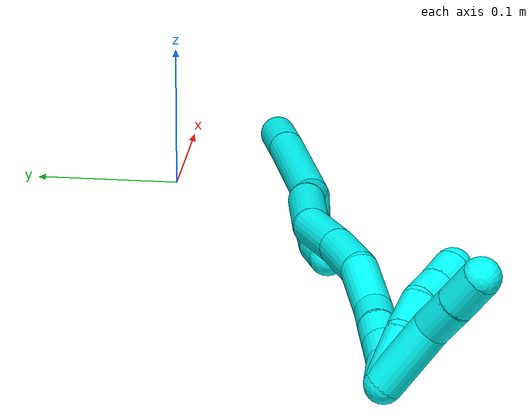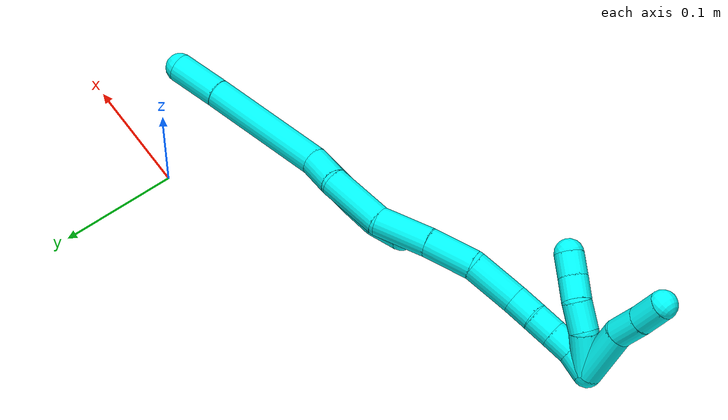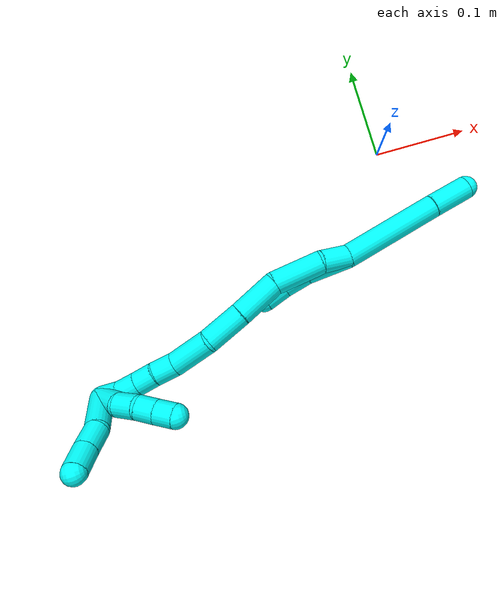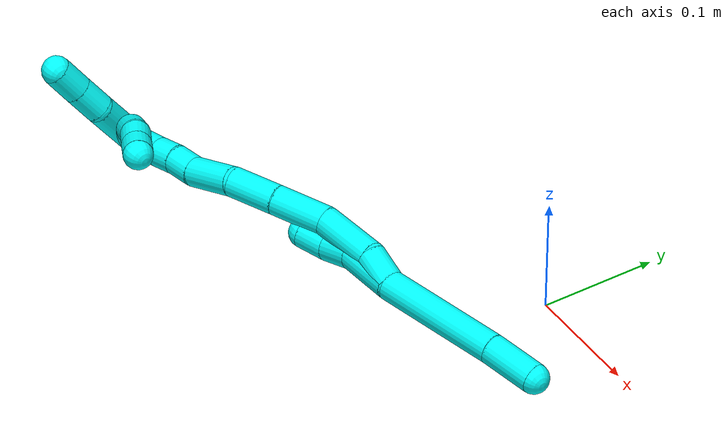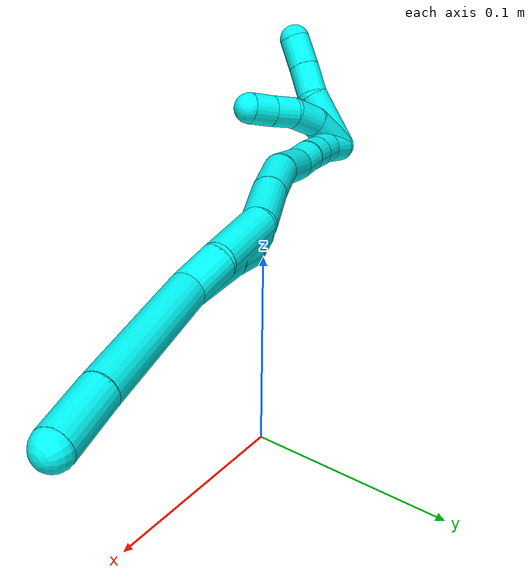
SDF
<sdf version="1.7">
 <world name="default">
  <model name="3">
   <static>0</static>
   <link name="3">
    <collision name="collision-cylinder-e_1_2_8">
     <pose>-0.00631 0.01017 -0.051983 -2.9484 -0.118577 1.09923</pose>
     <geometry><cylinder><radius>0.0125</radius><length>0.106687</length></cylinder></geometry>
     <surface>
      <friction><ode><mu>1.16</mu><mu2>1.16</mu2><slip1>0</slip1><slip2>0</slip2></ode></friction>
      <contact><ode><kp>1e+06</kp><kd>1</kd><max_vel>0</max_vel><min_depth>0.001</min_depth></ode></contact>
     </surface>
    </collision>
    <visual name="visual-cylinder-e_1_2_8">
     <pose>-0.00631 0.01017 -0.051983 -2.9484 -0.118577 1.09923</pose>
     <geometry><cylinder><radius>0.0125</radius><length>0.106687</length></cylinder></geometry>
     <material><ambient>0.003922 1 0.996078 1</ambient></material>
    </visual>
    <collision name="collision-cylinder-e_2_8_6">
     <pose>-0.016137 0.023586 -0.125088 -2.9891 -0.163062 1.63802</pose>
     <geometry><cylinder><radius>0.0125</radius><length>0.043313</length></cylinder></geometry>
     <surface>
      <friction><ode><mu>1.16</mu><mu2>1.16</mu2><slip1>0</slip1><slip2>0</slip2></ode></friction>
      <contact><ode><kp>1e+06</kp><kd>1</kd><max_vel>0</max_vel><min_depth>0.001</min_depth></ode></contact>
     </surface>
    </collision>
    <visual name="visual-cylinder-e_2_8_6">
     <pose>-0.016137 0.023586 -0.125088 -2.9891 -0.163062 1.63802</pose>
     <geometry><cylinder><radius>0.0125</radius><length>0.043313</length></cylinder></geometry>
     <material><ambient>0.003922 1 0.996078 1</ambient></material>
    </visual>
    <collision name="collision-cylinder-e_1_2_9">
     <pose>0.000117 -0.001576 0.023484 0.067004 0.00498 0.000167</pose>
     <geometry><cylinder><radius>0.0125</radius><length>0.047075</length></cylinder></geometry>
     <surface>
      <friction><ode><mu>1.16</mu><mu2>1.16</mu2><slip1>0</slip1><slip2>0</slip2></ode></friction>
      <contact><ode><kp>1e+06</kp><kd>1</kd><max_vel>0</max_vel><min_depth>0.001</min_depth></ode></contact>
     </surface>
    </collision>
    <visual name="visual-cylinder-e_1_2_9">
     <pose>0.000117 -0.001576 0.023484 0.067004 0.00498 0.000167</pose>
     <geometry><cylinder><radius>0.0125</radius><length>0.047075</length></cylinder></geometry>
     <material><ambient>0.003922 1 0.996078 1</ambient></material>
    </visual>
    <collision name="collision-cylinder-e_2_9_10">
     <pose>-0.001504 -0.007371 0.060091 0.311095 -0.125486 -0.019703</pose>
     <geometry><cylinder><radius>0.0125</radius><length>0.027786</length></cylinder></geometry>
     <surface>
      <friction><ode><mu>1.16</mu><mu2>1.16</mu2><slip1>0</slip1><slip2>0</slip2></ode></friction>
      <contact><ode><kp>1e+06</kp><kd>1</kd><max_vel>0</max_vel><min_depth>0.001</min_depth></ode></contact>
     </surface>
    </collision>
    <visual name="visual-cylinder-e_2_9_10">
     <pose>-0.001504 -0.007371 0.060091 0.311095 -0.125486 -0.019703</pose>
     <geometry><cylinder><radius>0.0125</radius><length>0.027786</length></cylinder></geometry>
     <material><ambient>0.003922 1 0.996078 1</ambient></material>
    </visual>
    <collision name="collision-cylinder-e_3_10_5">
     <pose>-0.001006 -0.014964 0.085113 0.276272 0.178917 0.024939</pose>
     <geometry><cylinder><radius>0.0125</radius><length>0.025139</length></cylinder></geometry>
     <surface>
      <friction><ode><mu>1.16</mu><mu2>1.16</mu2><slip1>0</slip1><slip2>0</slip2></ode></friction>
      <contact><ode><kp>1e+06</kp><kd>1</kd><max_vel>0</max_vel><min_depth>0.001</min_depth></ode></contact>
     </surface>
    </collision>
    <visual name="visual-cylinder-e_3_10_5">
     <pose>-0.001006 -0.014964 0.085113 0.276272 0.178917 0.024939</pose>
     <geometry><cylinder><radius>0.0125</radius><length>0.025139</length></cylinder></geometry>
     <material><ambient>0.003922 1 0.996078 1</ambient></material>
    </visual>
    <collision name="collision-cylinder-e_1_2_11">
     <pose>0.002573 0.002629 0.014765 -0.176198 0.169934 -0.015046</pose>
     <geometry><cylinder><radius>0.0125</radius><length>0.030433</length></cylinder></geometry>
     <surface>
      <friction><ode><mu>1.16</mu><mu2>1.16</mu2><slip1>0</slip1><slip2>0</slip2></ode></friction>
      <contact><ode><kp>1e+06</kp><kd>1</kd><max_vel>0</max_vel><min_depth>0.001</min_depth></ode></contact>
     </surface>
    </collision>
    <visual name="visual-cylinder-e_1_2_11">
     <pose>0.002573 0.002629 0.014765 -0.176198 0.169934 -0.015046</pose>
     <geometry><cylinder><radius>0.0125</radius><length>0.030433</length></cylinder></geometry>
     <material><ambient>0.003922 1 0.996078 1</ambient></material>
    </visual>
    <collision name="collision-cylinder-e_2_11_12">
     <pose>0.007164 0.002763 0.056134 0.093491 0.075362 0.003527</pose>
     <geometry><cylinder><radius>0.0125</radius><length>0.053592</length></cylinder></geometry>
     <surface>
      <friction><ode><mu>1.16</mu><mu2>1.16</mu2><slip1>0</slip1><slip2>0</slip2></ode></friction>
      <contact><ode><kp>1e+06</kp><kd>1</kd><max_vel>0</max_vel><min_depth>0.001</min_depth></ode></contact>
     </surface>
    </collision>
    <visual name="visual-cylinder-e_2_11_12">
     <pose>0.007164 0.002763 0.056134 0.093491 0.075362 0.003527</pose>
     <geometry><cylinder><radius>0.0125</radius><length>0.053592</length></cylinder></geometry>
     <material><ambient>0.003922 1 0.996078 1</ambient></material>
    </visual>
    <collision name="collision-cylinder-e_3_12_13">
     <pose>0.014766 -0.007732 0.103663 0.365172 0.244279 0.045322</pose>
     <geometry><cylinder><radius>0.0125</radius><length>0.046178</length></cylinder></geometry>
     <surface>
      <friction><ode><mu>1.16</mu><mu2>1.16</mu2><slip1>0</slip1><slip2>0</slip2></ode></friction>
      <contact><ode><kp>1e+06</kp><kd>1</kd><max_vel>0</max_vel><min_depth>0.001</min_depth></ode></contact>
     </surface>
    </collision>
    <visual name="visual-cylinder-e_3_12_13">
     <pose>0.014766 -0.007732 0.103663 0.365172 0.244279 0.045322</pose>
     <geometry><cylinder><radius>0.0125</radius><length>0.046178</length></cylinder></geometry>
     <material><ambient>0.003922 1 0.996078 1</ambient></material>
    </visual>
    <collision name="collision-cylinder-e_4_13_14">
     <pose>0.024056 -0.02286 0.143934 0.353007 0.177837 0.0318</pose>
     <geometry><cylinder><radius>0.0125</radius><length>0.041892</length></cylinder></geometry>
     <surface>
      <friction><ode><mu>1.16</mu><mu2>1.16</mu2><slip1>0</slip1><slip2>0</slip2></ode></friction>
      <contact><ode><kp>1e+06</kp><kd>1</kd><max_vel>0</max_vel><min_depth>0.001</min_depth></ode></contact>
     </surface>
    </collision>
    <visual name="visual-cylinder-e_4_13_14">
     <pose>0.024056 -0.02286 0.143934 0.353007 0.177837 0.0318</pose>
     <geometry><cylinder><radius>0.0125</radius><length>0.041892</length></cylinder></geometry>
     <material><ambient>0.003922 1 0.996078 1</ambient></material>
    </visual>
    <collision name="collision-cylinder-e_5_14_15">
     <pose>0.025189 -0.037897 0.183053 0.380542 -0.120195 -0.023177</pose>
     <geometry><cylinder><radius>0.0125</radius><length>0.042905</length></cylinder></geometry>
     <surface>
      <friction><ode><mu>1.16</mu><mu2>1.16</mu2><slip1>0</slip1><slip2>0</slip2></ode></friction>
      <contact><ode><kp>1e+06</kp><kd>1</kd><max_vel>0</max_vel><min_depth>0.001</min_depth></ode></contact>
     </surface>
    </collision>
    <visual name="visual-cylinder-e_5_14_15">
     <pose>0.025189 -0.037897 0.183053 0.380542 -0.120195 -0.023177</pose>
     <geometry><cylinder><radius>0.0125</radius><length>0.042905</length></cylinder></geometry>
     <material><ambient>0.003922 1 0.996078 1</ambient></material>
    </visual>
    <collision name="collision-cylinder-e_6_15_16">
     <pose>0.022685 -0.047621 0.213998 0.160885 0.006036 0.000487</pose>
     <geometry><cylinder><radius>0.0125</radius><length>0.022635</length></cylinder></geometry>
     <surface>
      <friction><ode><mu>1.16</mu><mu2>1.16</mu2><slip1>0</slip1><slip2>0</slip2></ode></friction>
      <contact><ode><kp>1e+06</kp><kd>1</kd><max_vel>0</max_vel><min_depth>0.001</min_depth></ode></contact>
     </surface>
    </collision>
    <visual name="visual-cylinder-e_6_15_16">
     <pose>0.022685 -0.047621 0.213998 0.160885 0.006036 0.000487</pose>
     <geometry><cylinder><radius>0.0125</radius><length>0.022635</length></cylinder></geometry>
     <material><ambient>0.003922 1 0.996078 1</ambient></material>
    </visual>
    <collision name="collision-cylinder-e_7_16_17">
     <pose>0.021976 -0.052071 0.234996 0.262158 -0.076263 -0.010059</pose>
     <geometry><cylinder><radius>0.0125</radius><length>0.020408</length></cylinder></geometry>
     <surface>
      <friction><ode><mu>1.16</mu><mu2>1.16</mu2><slip1>0</slip1><slip2>0</slip2></ode></friction>
      <contact><ode><kp>1e+06</kp><kd>1</kd><max_vel>0</max_vel><min_depth>0.001</min_depth></ode></contact>
     </surface>
    </collision>
    <visual name="visual-cylinder-e_7_16_17">
     <pose>0.021976 -0.052071 0.234996 0.262158 -0.076263 -0.010059</pose>
     <geometry><cylinder><radius>0.0125</radius><length>0.020408</length></cylinder></geometry>
     <material><ambient>0.003922 1 0.996078 1</ambient></material>
    </visual>
    <collision name="collision-cylinder-e_8_17_18">
     <pose>0.020512 -0.057147 0.255011 0.234986 -0.065434 -0.007726</pose>
     <geometry><cylinder><radius>0.0125</radius><length>0.020997</length></cylinder></geometry>
     <surface>
      <friction><ode><mu>1.16</mu><mu2>1.16</mu2><slip1>0</slip1><slip2>0</slip2></ode></friction>
      <contact><ode><kp>1e+06</kp><kd>1</kd><max_vel>0</max_vel><min_depth>0.001</min_depth></ode></contact>
     </surface>
    </collision>
    <visual name="visual-cylinder-e_8_17_18">
     <pose>0.020512 -0.057147 0.255011 0.234986 -0.065434 -0.007726</pose>
     <geometry><cylinder><radius>0.0125</radius><length>0.020997</length></cylinder></geometry>
     <material><ambient>0.003922 1 0.996078 1</ambient></material>
    </visual>
    <collision name="collision-cylinder-e_9_18_1">
     <pose>0.017252 -0.060573 0.27531 0.097305 -0.248039 -0.012139</pose>
     <geometry><cylinder><radius>0.0125</radius><length>0.020959</length></cylinder></geometry>
     <surface>
      <friction><ode><mu>1.16</mu><mu2>1.16</mu2><slip1>0</slip1><slip2>0</slip2></ode></friction>
      <contact><ode><kp>1e+06</kp><kd>1</kd><max_vel>0</max_vel><min_depth>0.001</min_depth></ode></contact>
     </surface>
    </collision>
    <visual name="visual-cylinder-e_9_18_1">
     <pose>0.017252 -0.060573 0.27531 0.097305 -0.248039 -0.012139</pose>
     <geometry><cylinder><radius>0.0125</radius><length>0.020959</length></cylinder></geometry>
     <material><ambient>0.003922 1 0.996078 1</ambient></material>
    </visual>
    <collision name="collision-cylinder-e_1_1_19">
     <pose>0.028754 -0.060072 0.275269 -2.99609 0.940864 -2.8569</pose>
     <geometry><cylinder><radius>0.0125</radius><length>0.034836</length></cylinder></geometry>
     <surface>
      <friction><ode><mu>1.16</mu><mu2>1.16</mu2><slip1>0</slip1><slip2>0</slip2></ode></friction>
      <contact><ode><kp>1e+06</kp><kd>1</kd><max_vel>0</max_vel><min_depth>0.001</min_depth></ode></contact>
     </surface>
    </collision>
    <visual name="visual-cylinder-e_1_1_19">
     <pose>0.028754 -0.060072 0.275269 -2.99609 0.940864 -2.8569</pose>
     <geometry><cylinder><radius>0.0125</radius><length>0.034836</length></cylinder></geometry>
     <material><ambient>0.003922 1 0.996078 1</ambient></material>
    </visual>
    <collision name="collision-cylinder-e_2_19_20">
     <pose>0.050278 -0.058979 0.255224 3.10174 0.645071 3.02248</pose>
     <geometry><cylinder><radius>0.0125</radius><length>0.024779</length></cylinder></geometry>
     <surface>
      <friction><ode><mu>1.16</mu><mu2>1.16</mu2><slip1>0</slip1><slip2>0</slip2></ode></friction>
      <contact><ode><kp>1e+06</kp><kd>1</kd><max_vel>0</max_vel><min_depth>0.001</min_depth></ode></contact>
     </surface>
    </collision>
    <visual name="visual-cylinder-e_2_19_20">
     <pose>0.050278 -0.058979 0.255224 3.10174 0.645071 3.02248</pose>
     <geometry><cylinder><radius>0.0125</radius><length>0.024779</length></cylinder></geometry>
     <material><ambient>0.003922 1 0.996078 1</ambient></material>
    </visual>
    <collision name="collision-cylinder-e_3_20_21">
     <pose>0.062303 -0.062265 0.236865 2.81249 0.472709 1.93441</pose>
     <geometry><cylinder><radius>0.0125</radius><length>0.020099</length></cylinder></geometry>
     <surface>
      <friction><ode><mu>1.16</mu><mu2>1.16</mu2><slip1>0</slip1><slip2>0</slip2></ode></friction>
      <contact><ode><kp>1e+06</kp><kd>1</kd><max_vel>0</max_vel><min_depth>0.001</min_depth></ode></contact>
     </surface>
    </collision>
    <visual name="visual-cylinder-e_3_20_21">
     <pose>0.062303 -0.062265 0.236865 2.81249 0.472709 1.93441</pose>
     <geometry><cylinder><radius>0.0125</radius><length>0.020099</length></cylinder></geometry>
     <material><ambient>0.003922 1 0.996078 1</ambient></material>
    </visual>
    <collision name="collision-cylinder-e_4_21_4">
     <pose>0.071833 -0.067586 0.219887 2.86357 0.510333 2.15695</pose>
     <geometry><cylinder><radius>0.0125</radius><length>0.020287</length></cylinder></geometry>
     <surface>
      <friction><ode><mu>1.16</mu><mu2>1.16</mu2><slip1>0</slip1><slip2>0</slip2></ode></friction>
      <contact><ode><kp>1e+06</kp><kd>1</kd><max_vel>0</max_vel><min_depth>0.001</min_depth></ode></contact>
     </surface>
    </collision>
    <visual name="visual-cylinder-e_4_21_4">
     <pose>0.071833 -0.067586 0.219887 2.86357 0.510333 2.15695</pose>
     <geometry><cylinder><radius>0.0125</radius><length>0.020287</length></cylinder></geometry>
     <material><ambient>0.003922 1 0.996078 1</ambient></material>
    </visual>
    <collision name="collision-cylinder-e_1_1_22">
     <pose>0.038472 -0.063625 0.286831 0.971685 1.46608 0.887657</pose>
     <geometry><cylinder><radius>0.0125</radius><length>0.047848</length></cylinder></geometry>
     <surface>
      <friction><ode><mu>1.16</mu><mu2>1.16</mu2><slip1>0</slip1><slip2>0</slip2></ode></friction>
      <contact><ode><kp>1e+06</kp><kd>1</kd><max_vel>0</max_vel><min_depth>0.001</min_depth></ode></contact>
     </surface>
    </collision>
    <visual name="visual-cylinder-e_1_1_22">
     <pose>0.038472 -0.063625 0.286831 0.971685 1.46608 0.887657</pose>
     <geometry><cylinder><radius>0.0125</radius><length>0.047848</length></cylinder></geometry>
     <material><ambient>0.003922 1 0.996078 1</ambient></material>
    </visual>
    <collision name="collision-cylinder-e_2_22_23">
     <pose>0.074353 -0.066814 0.29303 0.230498 1.18433 0.15543</pose>
     <geometry><cylinder><radius>0.0125</radius><length>0.026101</length></cylinder></geometry>
     <surface>
      <friction><ode><mu>1.16</mu><mu2>1.16</mu2><slip1>0</slip1><slip2>0</slip2></ode></friction>
      <contact><ode><kp>1e+06</kp><kd>1</kd><max_vel>0</max_vel><min_depth>0.001</min_depth></ode></contact>
     </surface>
    </collision>
    <visual name="visual-cylinder-e_2_22_23">
     <pose>0.074353 -0.066814 0.29303 0.230498 1.18433 0.15543</pose>
     <geometry><cylinder><radius>0.0125</radius><length>0.026101</length></cylinder></geometry>
     <material><ambient>0.003922 1 0.996078 1</ambient></material>
    </visual>
    <collision name="collision-cylinder-e_3_23_3">
     <pose>0.09878 -0.068914 0.301876 0.236172 1.24468 0.169824</pose>
     <geometry><cylinder><radius>0.0125</radius><length>0.026051</length></cylinder></geometry>
     <surface>
      <friction><ode><mu>1.16</mu><mu2>1.16</mu2><slip1>0</slip1><slip2>0</slip2></ode></friction>
      <contact><ode><kp>1e+06</kp><kd>1</kd><max_vel>0</max_vel><min_depth>0.001</min_depth></ode></contact>
     </surface>
    </collision>
    <visual name="visual-cylinder-e_3_23_3">
     <pose>0.09878 -0.068914 0.301876 0.236172 1.24468 0.169824</pose>
     <geometry><cylinder><radius>0.0125</radius><length>0.026051</length></cylinder></geometry>
     <material><ambient>0.003922 1 0.996078 1</ambient></material>
    </visual>
    <collision name="collision-sphere-3">
     <pose>0.111119 -0.06989 0.305934 0 -0 0</pose>
     <geometry><sphere><radius>0.0125</radius></sphere></geometry>
     <surface>
      <friction><ode><mu>1.16</mu><mu2>1.16</mu2><slip1>0</slip1><slip2>0</slip2></ode></friction>
      <contact><ode><kp>1e+06</kp><kd>1</kd><max_vel>0</max_vel><min_depth>0.001</min_depth></ode></contact>
     </surface>
    </collision>
    <visual name="visual-sphere-3">
     <pose>0.111119 -0.06989 0.305934 0 -0 0</pose>
     <geometry><sphere><radius>0.0125</radius></sphere></geometry>
     <material><ambient>0.003922 1 0.996078 1</ambient></material>
    </visual>
    <collision name="collision-sphere-23">
     <pose>0.086441 -0.067938 0.297819 0 -0 0</pose>
     <geometry><sphere><radius>0.0125</radius></sphere></geometry>
     <surface>
      <friction><ode><mu>1.16</mu><mu2>1.16</mu2><slip1>0</slip1><slip2>0</slip2></ode></friction>
      <contact><ode><kp>1e+06</kp><kd>1</kd><max_vel>0</max_vel><min_depth>0.001</min_depth></ode></contact>
     </surface>
    </collision>
    <visual name="visual-sphere-23">
     <pose>0.086441 -0.067938 0.297819 0 -0 0</pose>
     <geometry><sphere><radius>0.0125</radius></sphere></geometry>
     <material><ambient>0.003922 1 0.996078 1</ambient></material>
    </visual>
    <collision name="collision-sphere-22">
     <pose>0.062265 -0.06569 0.288241 0 -0 0</pose>
     <geometry><sphere><radius>0.0125</radius></sphere></geometry>
     <surface>
      <friction><ode><mu>1.16</mu><mu2>1.16</mu2><slip1>0</slip1><slip2>0</slip2></ode></friction>
      <contact><ode><kp>1e+06</kp><kd>1</kd><max_vel>0</max_vel><min_depth>0.001</min_depth></ode></contact>
     </surface>
    </collision>
    <visual name="visual-sphere-22">
     <pose>0.062265 -0.06569 0.288241 0 -0 0</pose>
     <geometry><sphere><radius>0.0125</radius></sphere></geometry>
     <material><ambient>0.003922 1 0.996078 1</ambient></material>
    </visual>
    <collision name="collision-sphere-4">
     <pose>0.076788 -0.070015 0.211376 0 -0 0</pose>
     <geometry><sphere><radius>0.0125</radius></sphere></geometry>
     <surface>
      <friction><ode><mu>1.16</mu><mu2>1.16</mu2><slip1>0</slip1><slip2>0</slip2></ode></friction>
      <contact><ode><kp>1e+06</kp><kd>1</kd><max_vel>0</max_vel><min_depth>0.001</min_depth></ode></contact>
     </surface>
    </collision>
    <visual name="visual-sphere-4">
     <pose>0.076788 -0.070015 0.211376 0 -0 0</pose>
     <geometry><sphere><radius>0.0125</radius></sphere></geometry>
     <material><ambient>0.003922 1 0.996078 1</ambient></material>
    </visual>
    <collision name="collision-sphere-21">
     <pose>0.066878 -0.065157 0.228398 0 -0 0</pose>
     <geometry><sphere><radius>0.0125</radius></sphere></geometry>
     <surface>
      <friction><ode><mu>1.16</mu><mu2>1.16</mu2><slip1>0</slip1><slip2>0</slip2></ode></friction>
      <contact><ode><kp>1e+06</kp><kd>1</kd><max_vel>0</max_vel><min_depth>0.001</min_depth></ode></contact>
     </surface>
    </collision>
    <visual name="visual-sphere-21">
     <pose>0.066878 -0.065157 0.228398 0 -0 0</pose>
     <geometry><sphere><radius>0.0125</radius></sphere></geometry>
     <material><ambient>0.003922 1 0.996078 1</ambient></material>
    </visual>
    <collision name="collision-sphere-20">
     <pose>0.057727 -0.059373 0.245333 0 -0 0</pose>
     <geometry><sphere><radius>0.0125</radius></sphere></geometry>
     <surface>
      <friction><ode><mu>1.16</mu><mu2>1.16</mu2><slip1>0</slip1><slip2>0</slip2></ode></friction>
      <contact><ode><kp>1e+06</kp><kd>1</kd><max_vel>0</max_vel><min_depth>0.001</min_depth></ode></contact>
     </surface>
    </collision>
    <visual name="visual-sphere-20">
     <pose>0.057727 -0.059373 0.245333 0 -0 0</pose>
     <geometry><sphere><radius>0.0125</radius></sphere></geometry>
     <material><ambient>0.003922 1 0.996078 1</ambient></material>
    </visual>
    <collision name="collision-sphere-5">
     <pose>0.001231 -0.018338 0.097013 0 -0 0</pose>
     <geometry><sphere><radius>0.0125</radius></sphere></geometry>
     <surface>
      <friction><ode><mu>1.16</mu><mu2>1.16</mu2><slip1>0</slip1><slip2>0</slip2></ode></friction>
      <contact><ode><kp>1e+06</kp><kd>1</kd><max_vel>0</max_vel><min_depth>0.001</min_depth></ode></contact>
     </surface>
    </collision>
    <visual name="visual-sphere-5">
     <pose>0.001231 -0.018338 0.097013 0 -0 0</pose>
     <geometry><sphere><radius>0.0125</radius></sphere></geometry>
     <material><ambient>0.003922 1 0.996078 1</ambient></material>
    </visual>
    <collision name="collision-sphere-10">
     <pose>-0.003243 -0.01159 0.073213 0 -0 0</pose>
     <geometry><sphere><radius>0.0125</radius></sphere></geometry>
     <surface>
      <friction><ode><mu>1.16</mu><mu2>1.16</mu2><slip1>0</slip1><slip2>0</slip2></ode></friction>
      <contact><ode><kp>1e+06</kp><kd>1</kd><max_vel>0</max_vel><min_depth>0.001</min_depth></ode></contact>
     </surface>
    </collision>
    <visual name="visual-sphere-10">
     <pose>-0.003243 -0.01159 0.073213 0 -0 0</pose>
     <geometry><sphere><radius>0.0125</radius></sphere></geometry>
     <material><ambient>0.003922 1 0.996078 1</ambient></material>
    </visual>
    <collision name="collision-sphere-6">
     <pose>-0.019652 0.026832 -0.146209 0 -0 0</pose>
     <geometry><sphere><radius>0.0125</radius></sphere></geometry>
     <surface>
      <friction><ode><mu>1.16</mu><mu2>1.16</mu2><slip1>0</slip1><slip2>0</slip2></ode></friction>
      <contact><ode><kp>1e+06</kp><kd>1</kd><max_vel>0</max_vel><min_depth>0.001</min_depth></ode></contact>
     </surface>
    </collision>
    <visual name="visual-sphere-6">
     <pose>-0.019652 0.026832 -0.146209 0 -0 0</pose>
     <geometry><sphere><radius>0.0125</radius></sphere></geometry>
     <material><ambient>0.003922 1 0.996078 1</ambient></material>
    </visual>
    <collision name="collision-sphere-9">
     <pose>0.000234 -0.003152 0.046968 0 -0 0</pose>
     <geometry><sphere><radius>0.0125</radius></sphere></geometry>
     <surface>
      <friction><ode><mu>1.16</mu><mu2>1.16</mu2><slip1>0</slip1><slip2>0</slip2></ode></friction>
      <contact><ode><kp>1e+06</kp><kd>1</kd><max_vel>0</max_vel><min_depth>0.001</min_depth></ode></contact>
     </surface>
    </collision>
    <visual name="visual-sphere-9">
     <pose>0.000234 -0.003152 0.046968 0 -0 0</pose>
     <geometry><sphere><radius>0.0125</radius></sphere></geometry>
     <material><ambient>0.003922 1 0.996078 1</ambient></material>
    </visual>
    <collision name="collision-sphere-2">
     <geometry><sphere><radius>0.0125</radius></sphere></geometry>
     <surface>
      <friction><ode><mu>1.16</mu><mu2>1.16</mu2><slip1>0</slip1><slip2>0</slip2></ode></friction>
      <contact><ode><kp>1e+06</kp><kd>1</kd><max_vel>0</max_vel><min_depth>0.001</min_depth></ode></contact>
     </surface>
    </collision>
    <visual name="visual-sphere-2">
     <geometry><sphere><radius>0.0125</radius></sphere></geometry>
     <material><ambient>0.003922 1 0.996078 1</ambient></material>
    </visual>
    <collision name="collision-sphere-19">
     <pose>0.042829 -0.058584 0.265116 0 -0 0</pose>
     <geometry><sphere><radius>0.0125</radius></sphere></geometry>
     <surface>
      <friction><ode><mu>1.16</mu><mu2>1.16</mu2><slip1>0</slip1><slip2>0</slip2></ode></friction>
      <contact><ode><kp>1e+06</kp><kd>1</kd><max_vel>0</max_vel><min_depth>0.001</min_depth></ode></contact>
     </surface>
    </collision>
    <visual name="visual-sphere-19">
     <pose>0.042829 -0.058584 0.265116 0 -0 0</pose>
     <geometry><sphere><radius>0.0125</radius></sphere></geometry>
     <material><ambient>0.003922 1 0.996078 1</ambient></material>
    </visual>
    <collision name="collision-sphere-8">
     <pose>-0.012621 0.020339 -0.103967 0 -0 0</pose>
     <geometry><sphere><radius>0.0125</radius></sphere></geometry>
     <surface>
      <friction><ode><mu>1.16</mu><mu2>1.16</mu2><slip1>0</slip1><slip2>0</slip2></ode></friction>
      <contact><ode><kp>1e+06</kp><kd>1</kd><max_vel>0</max_vel><min_depth>0.001</min_depth></ode></contact>
     </surface>
    </collision>
    <visual name="visual-sphere-8">
     <pose>-0.012621 0.020339 -0.103967 0 -0 0</pose>
     <geometry><sphere><radius>0.0125</radius></sphere></geometry>
     <material><ambient>0.003922 1 0.996078 1</ambient></material>
    </visual>
    <collision name="collision-sphere-11">
     <pose>0.005147 0.005258 0.02953 0 -0 0</pose>
     <geometry><sphere><radius>0.0125</radius></sphere></geometry>
     <surface>
      <friction><ode><mu>1.16</mu><mu2>1.16</mu2><slip1>0</slip1><slip2>0</slip2></ode></friction>
      <contact><ode><kp>1e+06</kp><kd>1</kd><max_vel>0</max_vel><min_depth>0.001</min_depth></ode></contact>
     </surface>
    </collision>
    <visual name="visual-sphere-11">
     <pose>0.005147 0.005258 0.02953 0 -0 0</pose>
     <geometry><sphere><radius>0.0125</radius></sphere></geometry>
     <material><ambient>0.003922 1 0.996078 1</ambient></material>
    </visual>
    <collision name="collision-sphere-12">
     <pose>0.009182 0.000269 0.082737 0 -0 0</pose>
     <geometry><sphere><radius>0.0125</radius></sphere></geometry>
     <surface>
      <friction><ode><mu>1.16</mu><mu2>1.16</mu2><slip1>0</slip1><slip2>0</slip2></ode></friction>
      <contact><ode><kp>1e+06</kp><kd>1</kd><max_vel>0</max_vel><min_depth>0.001</min_depth></ode></contact>
     </surface>
    </collision>
    <visual name="visual-sphere-12">
     <pose>0.009182 0.000269 0.082737 0 -0 0</pose>
     <geometry><sphere><radius>0.0125</radius></sphere></geometry>
     <material><ambient>0.003922 1 0.996078 1</ambient></material>
    </visual>
    <collision name="collision-sphere-13">
     <pose>0.02035 -0.015732 0.12459 0 -0 0</pose>
     <geometry><sphere><radius>0.0125</radius></sphere></geometry>
     <surface>
      <friction><ode><mu>1.16</mu><mu2>1.16</mu2><slip1>0</slip1><slip2>0</slip2></ode></friction>
      <contact><ode><kp>1e+06</kp><kd>1</kd><max_vel>0</max_vel><min_depth>0.001</min_depth></ode></contact>
     </surface>
    </collision>
    <visual name="visual-sphere-13">
     <pose>0.02035 -0.015732 0.12459 0 -0 0</pose>
     <geometry><sphere><radius>0.0125</radius></sphere></geometry>
     <material><ambient>0.003922 1 0.996078 1</ambient></material>
    </visual>
    <collision name="collision-sphere-14">
     <pose>0.027761 -0.029987 0.163279 0 -0 0</pose>
     <geometry><sphere><radius>0.0125</radius></sphere></geometry>
     <surface>
      <friction><ode><mu>1.16</mu><mu2>1.16</mu2><slip1>0</slip1><slip2>0</slip2></ode></friction>
      <contact><ode><kp>1e+06</kp><kd>1</kd><max_vel>0</max_vel><min_depth>0.001</min_depth></ode></contact>
     </surface>
    </collision>
    <visual name="visual-sphere-14">
     <pose>0.027761 -0.029987 0.163279 0 -0 0</pose>
     <geometry><sphere><radius>0.0125</radius></sphere></geometry>
     <material><ambient>0.003922 1 0.996078 1</ambient></material>
    </visual>
    <collision name="collision-sphere-15">
     <pose>0.022616 -0.045808 0.202827 0 -0 0</pose>
     <geometry><sphere><radius>0.0125</radius></sphere></geometry>
     <surface>
      <friction><ode><mu>1.16</mu><mu2>1.16</mu2><slip1>0</slip1><slip2>0</slip2></ode></friction>
      <contact><ode><kp>1e+06</kp><kd>1</kd><max_vel>0</max_vel><min_depth>0.001</min_depth></ode></contact>
     </surface>
    </collision>
    <visual name="visual-sphere-15">
     <pose>0.022616 -0.045808 0.202827 0 -0 0</pose>
     <geometry><sphere><radius>0.0125</radius></sphere></geometry>
     <material><ambient>0.003922 1 0.996078 1</ambient></material>
    </visual>
    <collision name="collision-sphere-16">
     <pose>0.022753 -0.049434 0.225169 0 -0 0</pose>
     <geometry><sphere><radius>0.0125</radius></sphere></geometry>
     <surface>
      <friction><ode><mu>1.16</mu><mu2>1.16</mu2><slip1>0</slip1><slip2>0</slip2></ode></friction>
      <contact><ode><kp>1e+06</kp><kd>1</kd><max_vel>0</max_vel><min_depth>0.001</min_depth></ode></contact>
     </surface>
    </collision>
    <visual name="visual-sphere-16">
     <pose>0.022753 -0.049434 0.225169 0 -0 0</pose>
     <geometry><sphere><radius>0.0125</radius></sphere></geometry>
     <material><ambient>0.003922 1 0.996078 1</ambient></material>
    </visual>
    <collision name="collision-sphere-17">
     <pose>0.021198 -0.054707 0.244823 0 -0 0</pose>
     <geometry><sphere><radius>0.0125</radius></sphere></geometry>
     <surface>
      <friction><ode><mu>1.16</mu><mu2>1.16</mu2><slip1>0</slip1><slip2>0</slip2></ode></friction>
      <contact><ode><kp>1e+06</kp><kd>1</kd><max_vel>0</max_vel><min_depth>0.001</min_depth></ode></contact>
     </surface>
    </collision>
    <visual name="visual-sphere-17">
     <pose>0.021198 -0.054707 0.244823 0 -0 0</pose>
     <geometry><sphere><radius>0.0125</radius></sphere></geometry>
     <material><ambient>0.003922 1 0.996078 1</ambient></material>
    </visual>
    <collision name="collision-sphere-18">
     <pose>0.019825 -0.059586 0.265199 0 -0 0</pose>
     <geometry><sphere><radius>0.0125</radius></sphere></geometry>
     <surface>
      <friction><ode><mu>1.16</mu><mu2>1.16</mu2><slip1>0</slip1><slip2>0</slip2></ode></friction>
      <contact><ode><kp>1e+06</kp><kd>1</kd><max_vel>0</max_vel><min_depth>0.001</min_depth></ode></contact>
     </surface>
    </collision>
    <visual name="visual-sphere-18">
     <pose>0.019825 -0.059586 0.265199 0 -0 0</pose>
     <geometry><sphere><radius>0.0125</radius></sphere></geometry>
     <material><ambient>0.003922 1 0.996078 1</ambient></material>
    </visual>
    <collision name="collision-sphere-1">
     <pose>0.01468 -0.06156 0.285421 0 -0 0</pose>
     <geometry><sphere><radius>0.0125</radius></sphere></geometry>
     <surface>
      <friction><ode><mu>1.16</mu><mu2>1.16</mu2><slip1>0</slip1><slip2>0</slip2></ode></friction>
      <contact><ode><kp>1e+06</kp><kd>1</kd><max_vel>0</max_vel><min_depth>0.001</min_depth></ode></contact>
     </surface>
    </collision>
    <visual name="visual-sphere-1">
     <pose>0.01468 -0.06156 0.285421 0 -0 0</pose>
     <geometry><sphere><radius>0.0125</radius></sphere></geometry>
     <material><ambient>0.003922 1 0.996078 1</ambient></material>
    </visual>
    <inertial>
     <pose>0.01982 -0.024842 0.12162 0 -0 0</pose>
     <mass>0.75</mass>
     <inertia><ixx>0.000227</ixx><ixy>0</ixy><ixz>0</ixz><iyy>0.000144</iyy><iyz>0</iyz><izz>-4e-06</izz></inertia>
    </inertial>
   </link>
   <pose>-0.066324 -0.10285 0.019978 1.49871 -1.02994 -1.47312</pose>
  </model>
 </world>
</sdf>
